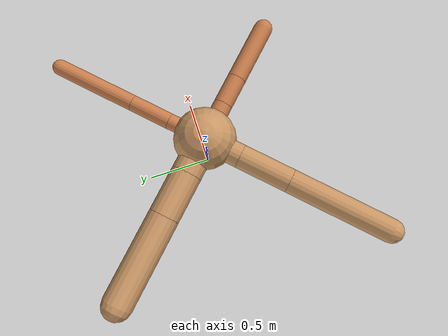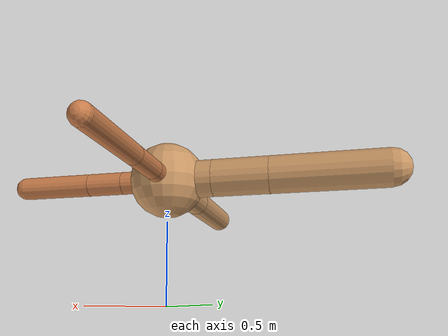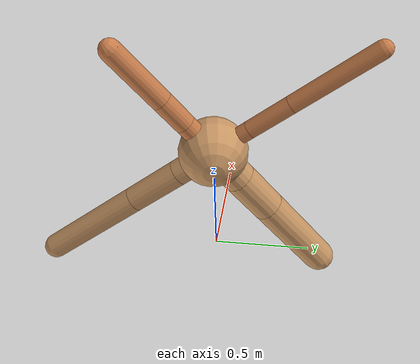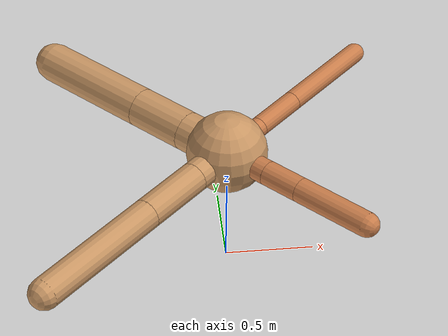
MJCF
<?xml version="1.0" ?>
<mujoco model="ant">

	<compiler angle="degree" coordinate="local" inertiafromgeom="true"/>

	<option integrator="RK4" timestep="0.01"/>

	<custom>

		<numeric data="0.0 0.0 0.55 1.0 0.0 0.0 0.0 0.0 1.0 0.0 -1.0 0.0 -1.0 0.0 1.0" name="init_qpos"/>

	</custom>

	<default>

		<joint armature="1" damping="1" limited="true"/>

		<geom conaffinity="0" condim="3" density="5.0" friction="1.5 0.1 0.1" margin="0.01" rgba="0.8 0.6 0.4 1"/>

	</default>

	<worldbody>

		<body name="torso" pos="0 0 0.75">

			<geom name="torso_geom" pos="0 0 0" size="0.2254017015490079" type="sphere"/>

			<!--joint armature="0" damping="0" limited="false" margin="0.01" name="root" pos="0 0 0" type="free"/-->

			<body name="front_left_leg" pos="0 0 0">

				<geom fromto="0 0 0 0.2 0.2 0" name="aux_1_geom" size="0.05747596167482712" type="capsule" rgba=".8 .5 .3 1"/>

				<body name="aux_1" pos="0.2 0.2 0">

					<joint axis="0 0 1" name="hip_1" pos="0.0 0.0 0.0" range="-40 40" type="hinge"/>

					<geom fromto="0 0 0 0.21226179071979692 0.21226179071979692 0" name="left_leg_geom" size="0.05747596167482712" type="capsule" rgba=".8 .5 .3 1"/>

					<body pos="0.21226179071979692 0.21226179071979692 0" name="front_left_foot">

						<joint axis="-1 1 0" name="ankle_1" pos="0.0 0.0 0.0" range="30 100" type="hinge"/>

						<geom fromto="0 0 0 0.42452358143959384 0.42452358143959384 0" name="left_ankle_geom" size="0.05747596167482712" type="capsule" rgba=".8 .5 .3 1"/>

					</body>

				</body>

			</body>

			<body name="front_right_leg" pos="0 0 0">

				<geom fromto="0 0 0 -0.2 0.2 0" name="aux_2_geom" size="0.11122298815113926" type="capsule"/>

				<body name="aux_2" pos="-0.2 0.2 0">

					<joint axis="0 0 1" name="hip_2" pos="0.0 0.0 0.0" range="-40 40" type="hinge"/>

					<geom fromto="0 0 0 -0.23679181276867445 0.23679181276867445 0" name="right_leg_geom" size="0.11122298815113926" type="capsule"/>

					<body pos="-0.23679181276867445 0.23679181276867445 0" name="front_right_foot">

						<joint axis="1 1 0" name="ankle_2" pos="0.0 0.0 0.0" range="-100 -30" type="hinge"/>

						<geom fromto="0 0 0 -0.4735836255373489 0.4735836255373489 0" name="right_ankle_geom" size="0.11122298815113926" type="capsule"/>

					</body>

				</body>

			</body>

			<body name="left_back_leg" pos="0 0 0">

				<geom fromto="0 0 0 -0.2 -0.2 0" name="aux_3_geom" size="0.08669233308976736" type="capsule"/>

				<body name="aux_3" pos="-0.2 -0.2 0">

					<joint axis="0 0 1" name="hip_3" pos="0.0 0.0 0.0" range="-40 40" type="hinge"/>

					<geom fromto="0 0 0 -0.2730611863193227 -0.2730611863193227 0" name="back_leg_geom" size="0.08669233308976736" type="capsule"/>

					<body pos="-0.2730611863193227 -0.2730611863193227 0" name="left_back_foot">

						<joint axis="-1 1 0" name="ankle_3" pos="0.0 0.0 0.0" range="-100 -30" type="hinge"/>

						<geom fromto="0 0 0 -0.5461223726386454 -0.5461223726386454 0" name="third_ankle_geom" size="0.08669233308976736" type="capsule"/>

					</body>

				</body>

			</body>

			<body name="right_back_leg" pos="0 0 0">

				<geom fromto="0 0 0 0.2 -0.2 0" name="aux_4_geom" size="0.0686208483477637" type="capsule" rgba=".8 .5 .3 1"/>

				<body name="aux_4" pos="0.2 -0.2 0">

					<joint axis="0 0 1" name="hip_4" pos="0.0 0.0 0.0" range="-40 40" type="hinge"/>

					<geom fromto="0 0 0 0.15419872163715512 -0.15419872163715512 0" name="rightback_leg_geom" size="0.0686208483477637" type="capsule" rgba=".8 .5 .3 1"/>

					<body pos="0.15419872163715512 -0.15419872163715512 0" name="right_back_foot">

						<joint axis="1 1 0" name="ankle_4" pos="0.0 0.0 0.0" range="30 100" type="hinge"/>

						<geom fromto="0 0 0 0.30839744327431023 -0.30839744327431023 0" name="fourth_ankle_geom" size="0.0686208483477637" type="capsule" rgba=".8 .5 .3 1"/>

					</body>

				</body>

			</body>

		</body>

	</worldbody>

	<actuator>

		<motor ctrllimited="true" ctrlrange="-1.0 1.0" joint="hip_4" gear="150"/>

		<motor ctrllimited="true" ctrlrange="-1.0 1.0" joint="ankle_4" gear="150"/>

		<motor ctrllimited="true" ctrlrange="-1.0 1.0" joint="hip_1" gear="150"/>

		<motor ctrllimited="true" ctrlrange="-1.0 1.0" joint="ankle_1" gear="150"/>

		<motor ctrllimited="true" ctrlrange="-1.0 1.0" joint="hip_2" gear="150"/>

		<motor ctrllimited="true" ctrlrange="-1.0 1.0" joint="ankle_2" gear="150"/>

		<motor ctrllimited="true" ctrlrange="-1.0 1.0" joint="hip_3" gear="150"/>

		<motor ctrllimited="true" ctrlrange="-1.0 1.0" joint="ankle_3" gear="150"/>

	</actuator>

</mujoco>
